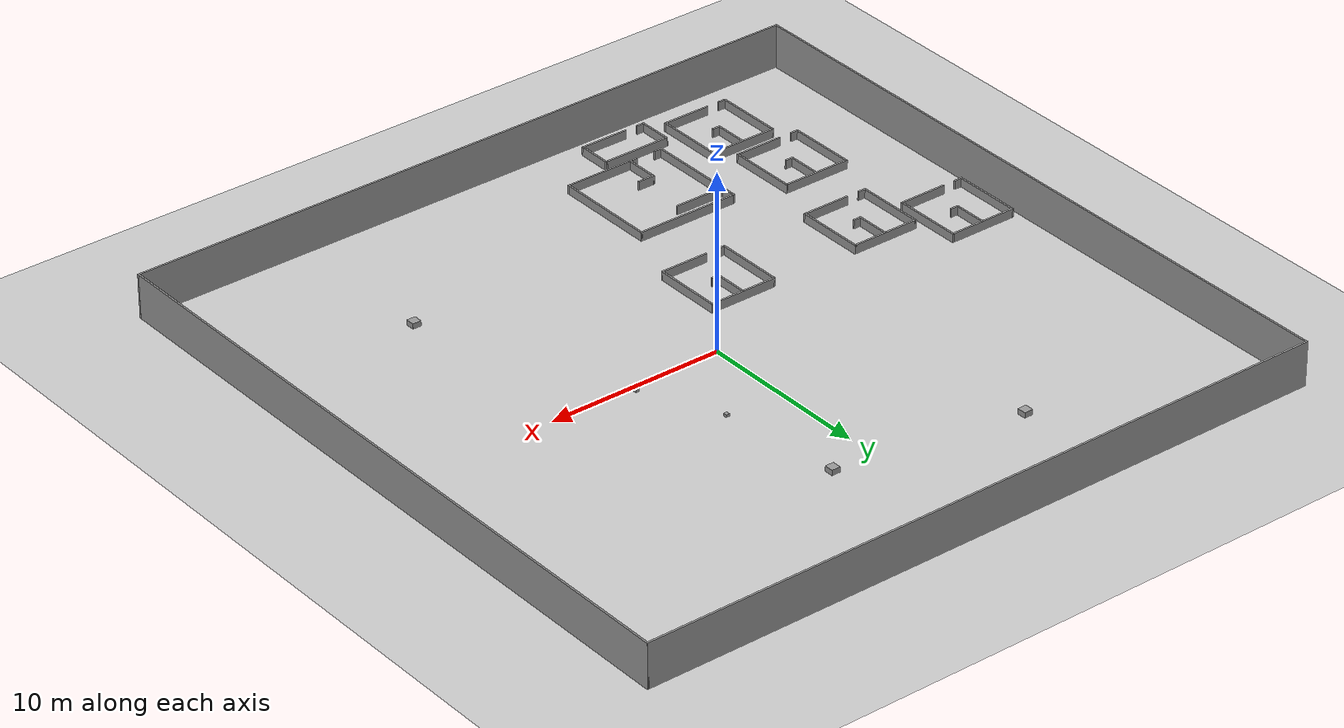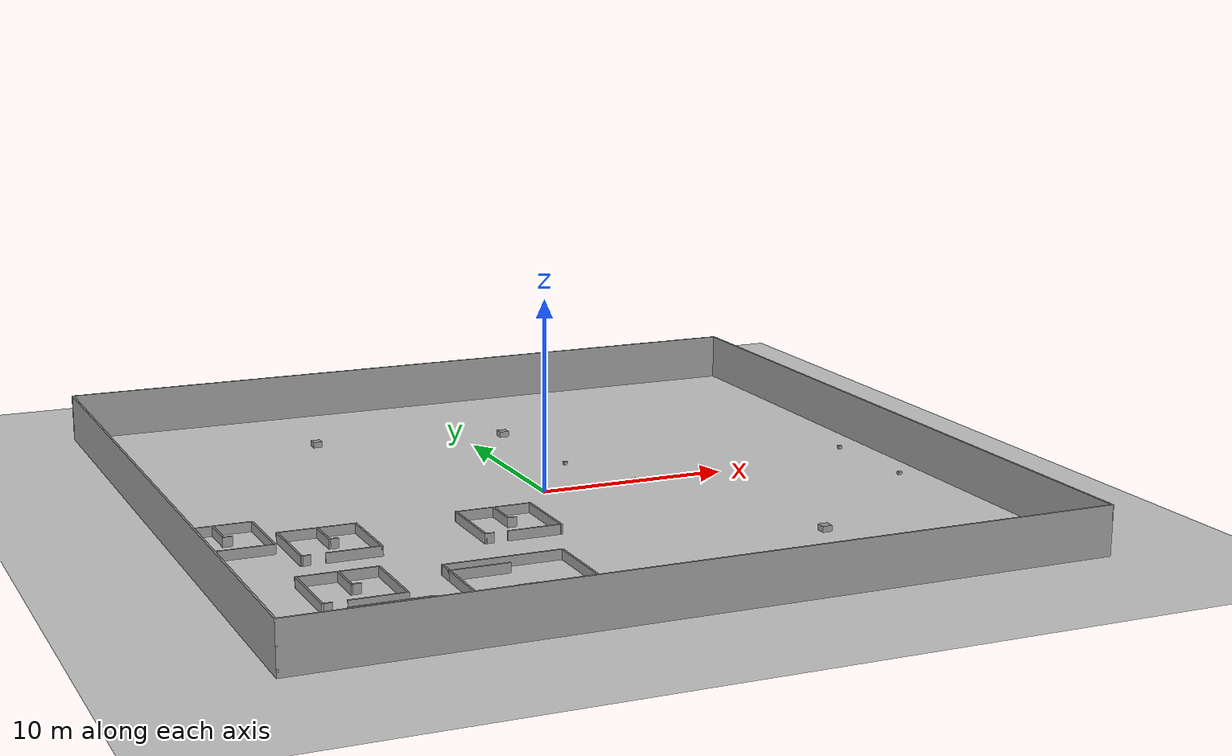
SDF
<sdf version="1.6">
 <world name="default">
  <model name="ground_plane">
   <static>1</static>
   <link name="link">
    <collision name="collision">
     <geometry><plane><normal>0 0 1</normal><size>40 40</size></plane></geometry>
     <surface>
      <contact><collide_bitmask>65535</collide_bitmask></contact>
      <friction><ode><mu>100</mu><mu2>50</mu2></ode></friction>
     </surface>
     <max_contacts>15</max_contacts>
    </collision>
    <visual name="visual">
     <cast_shadows>0</cast_shadows>
     <geometry><plane><normal>0 0 1</normal><size>40 40</size></plane></geometry>
     <material>
      <script><uri>file://media/materials/scripts/gazebo.material</uri><name>Gazebo/Grey</name></script>
     </material>
    </visual>
   </link>
  </model>
  <model name="outsidewall.sdf">
   <link name="Wall_3">
    <collision name="Wall_3_Collision">
     <geometry><box><size>40 0.10 2.5</size></box></geometry>
     <pose>0 0 1.25 0 -0 0</pose>
    </collision>
    <visual name="Wall_3_Visual">
     <pose>0 0 1.25 0 -0 0</pose>
     <geometry><box><size>40 0.10 2.5</size></box></geometry>
     <material>
      <script><uri>file://media/materials/scripts/gazebo.material</uri><name>Gazebo/Grey</name></script>
      <ambient>1 1 1 1</ambient>
     </material>
     <meta><layer>0</layer></meta>
    </visual>
    <pose>0 19.95 0 0 -0 0</pose>
   </link>
   <link name="Wall_5">
    <collision name="Wall_5_Collision">
     <geometry><box><size>40 0.10 2.5</size></box></geometry>
     <pose>0 0 1.25 0 -0 0</pose>
    </collision>
    <visual name="Wall_5_Visual">
     <pose>0 0 1.25 0 -0 0</pose>
     <geometry><box><size>40 0.10 2.5</size></box></geometry>
     <material>
      <script><uri>file://media/materials/scripts/gazebo.material</uri><name>Gazebo/Grey</name></script>
      <ambient>1 1 1 1</ambient>
     </material>
     <meta><layer>0</layer></meta>
    </visual>
    <pose>-19.95 0 0 0 -0 1.5707</pose>
   </link>
   <link name="Wall_6">
    <collision name="Wall_6_Collision">
     <geometry><box><size>40 0.10 2.5</size></box></geometry>
     <pose>0 0 1.25 0 -0 0</pose>
    </collision>
    <visual name="Wall_6_Visual">
     <pose>0 0 1.25 0 -0 0</pose>
     <geometry><box><size>40 0.10 2.5</size></box></geometry>
     <material>
      <script><uri>file://media/materials/scripts/gazebo.material</uri><name>Gazebo/Grey</name></script>
      <ambient>1 1 1 1</ambient>
     </material>
     <meta><layer>0</layer></meta>
    </visual>
    <pose>0 -19.95 0 0 -0 0</pose>
   </link>
   <link name="Wall_7">
    <collision name="Wall_7_Collision">
     <geometry><box><size>40 0.10 2.5</size></box></geometry>
     <pose>0 0 1.25 0 -0 0</pose>
    </collision>
    <visual name="Wall_7_Visual">
     <pose>0 0 1.25 0 -0 0</pose>
     <geometry><box><size>40 0.10 2.5</size></box></geometry>
     <material>
      <script><uri>file://media/materials/scripts/gazebo.material</uri><name>Gazebo/Grey</name></script>
      <ambient>1 1 1 1</ambient>
     </material>
     <meta><layer>0</layer></meta>
    </visual>
    <pose>19.95 0 0 0 -0 1.5707</pose>
   </link>
   <static>1</static>
  </model>
  <model name="shape5">
   <pose>-6.5 -13.4 0 0 -0 0</pose>
   <link name="Wall_10">
    <collision name="Wall_10_Collision">
     <geometry><box><size>6 0.1 0.5</size></box></geometry>
     <pose>0 0 0.25 0 -0 0</pose>
    </collision>
    <visual name="Wall_10_Visual">
     <pose>0 0 0.25 0 -0 0</pose>
     <geometry><box><size>6 0.1 0.5</size></box></geometry>
     <material>
      <script><uri>file://media/materials/scripts/gazebo.material</uri><name>Gazebo/Grey</name></script>
      <ambient>1 1 1 1</ambient>
     </material>
     <meta><layer>0</layer></meta>
    </visual>
    <pose>-0 2.95 0 0 -0 0</pose>
   </link>
   <link name="Wall_11">
    <collision name="Wall_11_Collision">
     <geometry><box><size>6 0.1 0.5</size></box></geometry>
     <pose>0 0 0.25 0 -0 0</pose>
    </collision>
    <visual name="Wall_11_Visual">
     <pose>0 0 0.25 0 -0 0</pose>
     <geometry><box><size>6 0.1 0.5</size></box></geometry>
     <material>
      <script><uri>file://media/materials/scripts/gazebo.material</uri><name>Gazebo/Grey</name></script>
      <ambient>1 1 1 1</ambient>
     </material>
     <meta><layer>0</layer></meta>
    </visual>
    <pose>2.95 0 0 0 -0 -1.5708</pose>
   </link>
   <link name="Wall_12">
    <collision name="Wall_12_Collision">
     <geometry><box><size>4 0.1 0.5</size></box></geometry>
     <pose>0 0 0.25 0 -0 0</pose>
    </collision>
    <visual name="Wall_12_Visual">
     <pose>0 0 0.25 0 -0 0</pose>
     <geometry><box><size>4 0.1 0.5</size></box></geometry>
     <material>
      <script><uri>file://media/materials/scripts/gazebo.material</uri><name>Gazebo/Grey</name></script>
      <ambient>1 1 1 1</ambient>
     </material>
     <meta><layer>0</layer></meta>
    </visual>
    <pose>1 -2.95 0 0 -0 3.14159</pose>
   </link>
   <link name="Wall_13">
    <collision name="Wall_13_Collision">
     <geometry><box><size>2 0.1 0.5</size></box></geometry>
     <pose>0 0 0.25 0 -0 0</pose>
    </collision>
    <visual name="Wall_13_Visual">
     <pose>0 0 0.25 0 -0 0</pose>
     <geometry><box><size>2 0.1 0.5</size></box></geometry>
     <material>
      <script><uri>file://media/materials/scripts/gazebo.material</uri><name>Gazebo/Grey</name></script>
      <ambient>1 1 1 1</ambient>
     </material>
     <meta><layer>0</layer></meta>
    </visual>
    <pose>-0.95 -2 0 0 -0 1.5708</pose>
   </link>
   <link name="Wall_14">
    <collision name="Wall_14_Collision">
     <geometry><box><size>1.00029 0.1 0.5</size></box></geometry>
     <pose>0 0 0.25 0 -0 0</pose>
    </collision>
    <visual name="Wall_14_Visual">
     <pose>0 0 0.25 0 -0 0</pose>
     <geometry><box><size>1.00029 0.1 0.5</size></box></geometry>
     <material>
      <script><uri>file://media/materials/scripts/gazebo.material</uri><name>Gazebo/Grey</name></script>
      <ambient>1 1 1 1</ambient>
     </material>
     <meta><layer>0</layer></meta>
    </visual>
    <pose>-0.5 -1.05 0 0 -0 0</pose>
   </link>
   <link name="Wall_18">
    <collision name="Wall_18_Collision">
     <geometry><box><size>1 0.1 0.5</size></box></geometry>
     <pose>0 0 0.25 0 -0 0</pose>
    </collision>
    <visual name="Wall_18_Visual">
     <pose>0 0 0.25 0 -0 0</pose>
     <geometry><box><size>1 0.1 0.5</size></box></geometry>
     <material>
      <script><uri>file://media/materials/scripts/gazebo.material</uri><name>Gazebo/Grey</name></script>
      <ambient>1 1 1 1</ambient>
     </material>
     <meta><layer>0</layer></meta>
    </visual>
    <pose>-2.95 2.5 0 0 -0 -1.5708</pose>
   </link>
   <link name="Wall_19">
    <collision name="Wall_19_Collision">
     <geometry><box><size>3 0.1 0.5</size></box></geometry>
     <pose>0 0 0.25 0 -0 0</pose>
    </collision>
    <visual name="Wall_19_Visual">
     <pose>0 0 0.25 0 -0 0</pose>
     <geometry><box><size>3 0.1 0.5</size></box></geometry>
     <material>
      <script><uri>file://media/materials/scripts/gazebo.material</uri><name>Gazebo/Grey</name></script>
      <ambient>1 1 1 1</ambient>
     </material>
     <meta><layer>0</layer></meta>
    </visual>
    <pose>-1.5 2.05 0 0 -0 0</pose>
   </link>
   <link name="Wall_21">
    <collision name="Wall_21_Collision">
     <geometry><box><size>5.1 0.1 0.5</size></box></geometry>
     <pose>0 0 0.25 0 -0 0</pose>
    </collision>
    <visual name="Wall_21_Visual">
     <pose>0 0 0.25 0 -0 0</pose>
     <geometry><box><size>5.1 0.1 0.5</size></box></geometry>
     <material>
      <script><uri>file://media/materials/scripts/gazebo.material</uri><name>Gazebo/Grey</name></script>
      <ambient>1 1 1 1</ambient>
     </material>
     <meta><layer>0</layer></meta>
    </visual>
    <pose>-2.95 -0.45 0 0 -0 -1.5708</pose>
   </link>
   <link name="Wall_22">
    <collision name="Wall_22_Collision">
     <geometry><box><size>0.5 0.1 0.5</size></box></geometry>
     <pose>0 0 0.25 0 -0 0</pose>
    </collision>
    <visual name="Wall_22_Visual">
     <pose>0 0 0.25 0 -0 0</pose>
     <geometry><box><size>0.5 0.1 0.5</size></box></geometry>
     <material>
      <script><uri>file://media/materials/scripts/gazebo.material</uri><name>Gazebo/Grey</name></script>
      <ambient>1 1 1 1</ambient>
     </material>
     <meta><layer>0</layer></meta>
    </visual>
    <pose>-2.75 -2.95 0 0 -0 0</pose>
   </link>
   <link name="Wall_24">
    <collision name="Wall_24_Collision">
     <geometry><box><size>0.5 0.1 0.5</size></box></geometry>
     <pose>0 0 0.25 0 -0 0</pose>
    </collision>
    <visual name="Wall_24_Visual">
     <pose>0 0 0.25 0 -0 0</pose>
     <geometry><box><size>0.5 0.1 0.5</size></box></geometry>
     <material>
      <script><uri>file://media/materials/scripts/gazebo.material</uri><name>Gazebo/Grey</name></script>
      <ambient>1 1 1 1</ambient>
     </material>
     <meta><layer>0</layer></meta>
    </visual>
    <pose>-1.15 -2.95 0 0 -0 3.14159</pose>
   </link>
   <static>1</static>
  </model>
  <model name="shape4">
   <pose>-13 -4.8 0 0 -0 0</pose>
   <link name="Wall_0">
    <collision name="Wall_0_Collision">
     <geometry><box><size>4 0.1 0.5</size></box></geometry>
     <pose>0 0 0.25 0 -0 0</pose>
    </collision>
    <visual name="Wall_0_Visual">
     <pose>0 0 0.25 0 -0 0</pose>
     <geometry><box><size>4 0.1 0.5</size></box></geometry>
     <material>
      <script><uri>file://media/materials/scripts/gazebo.material</uri><name>Gazebo/Grey</name></script>
      <ambient>1 1 1 1</ambient>
     </material>
     <meta><layer>0</layer></meta>
    </visual>
    <pose>-1.95 0 0 0 -0 -1.5708</pose>
   </link>
   <link name="Wall_1">
    <collision name="Wall_1_Collision">
     <geometry><box><size>0.5 0.1 0.5</size></box></geometry>
     <pose>0 0 0.25 0 -0 0</pose>
    </collision>
    <visual name="Wall_1_Visual">
     <pose>0 0 0.25 0 -0 0</pose>
     <geometry><box><size>0.5 0.1 0.5</size></box></geometry>
     <material>
      <script><uri>file://media/materials/scripts/gazebo.material</uri><name>Gazebo/Grey</name></script>
      <ambient>1 1 1 1</ambient>
     </material>
     <meta><layer>0</layer></meta>
    </visual>
    <pose>-1.75 -1.95 0 0 -0 0</pose>
   </link>
   <link name="Wall_3">
    <collision name="Wall_3_Collision">
     <geometry><box><size>4 0.1 0.5</size></box></geometry>
     <pose>0 0 0.25 0 -0 0</pose>
    </collision>
    <visual name="Wall_3_Visual">
     <pose>0 0 0.25 0 -0 0</pose>
     <geometry><box><size>4 0.1 0.5</size></box></geometry>
     <material>
      <script><uri>file://media/materials/scripts/gazebo.material</uri><name>Gazebo/Grey</name></script>
      <ambient>1 1 1 1</ambient>
     </material>
     <meta><layer>0</layer></meta>
    </visual>
    <pose>0 1.95 0 0 -0 0</pose>
   </link>
   <link name="Wall_4">
    <collision name="Wall_4_Collision">
     <geometry><box><size>4 0.1 0.5</size></box></geometry>
     <pose>0 0 0.25 0 -0 0</pose>
    </collision>
    <visual name="Wall_4_Visual">
     <pose>0 0 0.25 0 -0 0</pose>
     <geometry><box><size>4 0.1 0.5</size></box></geometry>
     <material>
      <script><uri>file://media/materials/scripts/gazebo.material</uri><name>Gazebo/Grey</name></script>
      <ambient>1 1 1 1</ambient>
     </material>
     <meta><layer>0</layer></meta>
    </visual>
    <pose>1.95 0 0 0 -0 -1.5708</pose>
   </link>
   <link name="Wall_5">
    <collision name="Wall_5_Collision">
     <geometry><box><size>2.8 0.1 0.5</size></box></geometry>
     <pose>0 0 0.25 0 -0 0</pose>
    </collision>
    <visual name="Wall_5_Visual">
     <pose>0 0 0.25 0 -0 0</pose>
     <geometry><box><size>2.8 0.1 0.5</size></box></geometry>
     <material>
      <script><uri>file://media/materials/scripts/gazebo.material</uri><name>Gazebo/Grey</name></script>
      <ambient>1 1 1 1</ambient>
     </material>
     <meta><layer>0</layer></meta>
    </visual>
    <pose>0.6 -1.95 0 0 -0 3.14159</pose>
   </link>
   <link name="Wall_7">
    <collision name="Wall_7_Collision">
     <geometry><box><size>2 0.1 0.5</size></box></geometry>
     <pose>0 0 0.25 0 -0 0</pose>
    </collision>
    <visual name="Wall_7_Visual">
     <pose>0 0 0.25 0 -0 0</pose>
     <geometry><box><size>2 0.1 0.5</size></box></geometry>
     <material>
      <script><uri>file://media/materials/scripts/gazebo.material</uri><name>Gazebo/Grey</name></script>
      <ambient>1 1 1 1</ambient>
     </material>
     <meta><layer>0</layer></meta>
    </visual>
    <pose>0.015 0.991 0 0 -0 -1.5708</pose>
   </link>
   <link name="Wall_8">
    <collision name="Wall_8_Collision">
     <geometry><box><size>0.5 0.1 0.5</size></box></geometry>
     <pose>0 0 0.25 0 -0 0</pose>
    </collision>
    <visual name="Wall_8_Visual">
     <pose>0 0 0.25 0 -0 0</pose>
     <geometry><box><size>0.5 0.1 0.5</size></box></geometry>
     <material>
      <script><uri>file://media/materials/scripts/gazebo.material</uri><name>Gazebo/Grey</name></script>
      <ambient>1 1 1 1</ambient>
     </material>
     <meta><layer>0</layer></meta>
    </visual>
    <pose>0.215 0.041 0 0 -0 0</pose>
   </link>
   <static>1</static>
  </model>
  <model name="shape4">
   <pose>-4 -4.9 0 0 -0 0</pose>
   <link name="Wall_0">
    <collision name="Wall_0_Collision">
     <geometry><box><size>4 0.1 0.5</size></box></geometry>
     <pose>0 0 0.25 0 -0 0</pose>
    </collision>
    <visual name="Wall_0_Visual">
     <pose>0 0 0.25 0 -0 0</pose>
     <geometry><box><size>4 0.1 0.5</size></box></geometry>
     <material>
      <script><uri>file://media/materials/scripts/gazebo.material</uri><name>Gazebo/Grey</name></script>
      <ambient>1 1 1 1</ambient>
     </material>
     <meta><layer>0</layer></meta>
    </visual>
    <pose>-1.95 0 0 0 -0 -1.5708</pose>
   </link>
   <link name="Wall_1">
    <collision name="Wall_1_Collision">
     <geometry><box><size>0.5 0.1 0.5</size></box></geometry>
     <pose>0 0 0.25 0 -0 0</pose>
    </collision>
    <visual name="Wall_1_Visual">
     <pose>0 0 0.25 0 -0 0</pose>
     <geometry><box><size>0.5 0.1 0.5</size></box></geometry>
     <material>
      <script><uri>file://media/materials/scripts/gazebo.material</uri><name>Gazebo/Grey</name></script>
      <ambient>1 1 1 1</ambient>
     </material>
     <meta><layer>0</layer></meta>
    </visual>
    <pose>-1.75 -1.95 0 0 -0 0</pose>
   </link>
   <link name="Wall_3">
    <collision name="Wall_3_Collision">
     <geometry><box><size>4 0.1 0.5</size></box></geometry>
     <pose>0 0 0.25 0 -0 0</pose>
    </collision>
    <visual name="Wall_3_Visual">
     <pose>0 0 0.25 0 -0 0</pose>
     <geometry><box><size>4 0.1 0.5</size></box></geometry>
     <material>
      <script><uri>file://media/materials/scripts/gazebo.material</uri><name>Gazebo/Grey</name></script>
      <ambient>1 1 1 1</ambient>
     </material>
     <meta><layer>0</layer></meta>
    </visual>
    <pose>0 1.95 0 0 -0 0</pose>
   </link>
   <link name="Wall_4">
    <collision name="Wall_4_Collision">
     <geometry><box><size>4 0.1 0.5</size></box></geometry>
     <pose>0 0 0.25 0 -0 0</pose>
    </collision>
    <visual name="Wall_4_Visual">
     <pose>0 0 0.25 0 -0 0</pose>
     <geometry><box><size>4 0.1 0.5</size></box></geometry>
     <material>
      <script><uri>file://media/materials/scripts/gazebo.material</uri><name>Gazebo/Grey</name></script>
      <ambient>1 1 1 1</ambient>
     </material>
     <meta><layer>0</layer></meta>
    </visual>
    <pose>1.95 0 0 0 -0 -1.5708</pose>
   </link>
   <link name="Wall_5">
    <collision name="Wall_5_Collision">
     <geometry><box><size>2.8 0.1 0.5</size></box></geometry>
     <pose>0 0 0.25 0 -0 0</pose>
    </collision>
    <visual name="Wall_5_Visual">
     <pose>0 0 0.25 0 -0 0</pose>
     <geometry><box><size>2.8 0.1 0.5</size></box></geometry>
     <material>
      <script><uri>file://media/materials/scripts/gazebo.material</uri><name>Gazebo/Grey</name></script>
      <ambient>1 1 1 1</ambient>
     </material>
     <meta><layer>0</layer></meta>
    </visual>
    <pose>0.6 -1.95 0 0 -0 3.14159</pose>
   </link>
   <link name="Wall_7">
    <collision name="Wall_7_Collision">
     <geometry><box><size>2 0.1 0.5</size></box></geometry>
     <pose>0 0 0.25 0 -0 0</pose>
    </collision>
    <visual name="Wall_7_Visual">
     <pose>0 0 0.25 0 -0 0</pose>
     <geometry><box><size>2 0.1 0.5</size></box></geometry>
     <material>
      <script><uri>file://media/materials/scripts/gazebo.material</uri><name>Gazebo/Grey</name></script>
      <ambient>1 1 1 1</ambient>
     </material>
     <meta><layer>0</layer></meta>
    </visual>
    <pose>0.015 0.991 0 0 -0 -1.5708</pose>
   </link>
   <link name="Wall_8">
    <collision name="Wall_8_Collision">
     <geometry><box><size>0.5 0.1 0.5</size></box></geometry>
     <pose>0 0 0.25 0 -0 0</pose>
    </collision>
    <visual name="Wall_8_Visual">
     <pose>0 0 0.25 0 -0 0</pose>
     <geometry><box><size>0.5 0.1 0.5</size></box></geometry>
     <material>
      <script><uri>file://media/materials/scripts/gazebo.material</uri><name>Gazebo/Grey</name></script>
      <ambient>1 1 1 1</ambient>
     </material>
     <meta><layer>0</layer></meta>
    </visual>
    <pose>0.215 0.041 0 0 -0 0</pose>
   </link>
   <static>1</static>
  </model>
  <model name="shape4">
   <pose>-13.2 -16.3 0 0 -0 0</pose>
   <link name="Wall_0">
    <collision name="Wall_0_Collision">
     <geometry><box><size>4 0.1 0.5</size></box></geometry>
     <pose>0 0 0.25 0 -0 0</pose>
    </collision>
    <visual name="Wall_0_Visual">
     <pose>0 0 0.25 0 -0 0</pose>
     <geometry><box><size>4 0.1 0.5</size></box></geometry>
     <material>
      <script><uri>file://media/materials/scripts/gazebo.material</uri><name>Gazebo/Grey</name></script>
      <ambient>1 1 1 1</ambient>
     </material>
     <meta><layer>0</layer></meta>
    </visual>
    <pose>-1.95 0 0 0 -0 -1.5708</pose>
   </link>
   <link name="Wall_1">
    <collision name="Wall_1_Collision">
     <geometry><box><size>0.5 0.1 0.5</size></box></geometry>
     <pose>0 0 0.25 0 -0 0</pose>
    </collision>
    <visual name="Wall_1_Visual">
     <pose>0 0 0.25 0 -0 0</pose>
     <geometry><box><size>0.5 0.1 0.5</size></box></geometry>
     <material>
      <script><uri>file://media/materials/scripts/gazebo.material</uri><name>Gazebo/Grey</name></script>
      <ambient>1 1 1 1</ambient>
     </material>
     <meta><layer>0</layer></meta>
    </visual>
    <pose>-1.75 -1.95 0 0 -0 0</pose>
   </link>
   <link name="Wall_3">
    <collision name="Wall_3_Collision">
     <geometry><box><size>4 0.1 0.5</size></box></geometry>
     <pose>0 0 0.25 0 -0 0</pose>
    </collision>
    <visual name="Wall_3_Visual">
     <pose>0 0 0.25 0 -0 0</pose>
     <geometry><box><size>4 0.1 0.5</size></box></geometry>
     <material>
      <script><uri>file://media/materials/scripts/gazebo.material</uri><name>Gazebo/Grey</name></script>
      <ambient>1 1 1 1</ambient>
     </material>
     <meta><layer>0</layer></meta>
    </visual>
    <pose>0 1.95 0 0 -0 0</pose>
   </link>
   <link name="Wall_4">
    <collision name="Wall_4_Collision">
     <geometry><box><size>4 0.1 0.5</size></box></geometry>
     <pose>0 0 0.25 0 -0 0</pose>
    </collision>
    <visual name="Wall_4_Visual">
     <pose>0 0 0.25 0 -0 0</pose>
     <geometry><box><size>4 0.1 0.5</size></box></geometry>
     <material>
      <script><uri>file://media/materials/scripts/gazebo.material</uri><name>Gazebo/Grey</name></script>
      <ambient>1 1 1 1</ambient>
     </material>
     <meta><layer>0</layer></meta>
    </visual>
    <pose>1.95 0 0 0 -0 -1.5708</pose>
   </link>
   <link name="Wall_5">
    <collision name="Wall_5_Collision">
     <geometry><box><size>2.8 0.1 0.5</size></box></geometry>
     <pose>0 0 0.25 0 -0 0</pose>
    </collision>
    <visual name="Wall_5_Visual">
     <pose>0 0 0.25 0 -0 0</pose>
     <geometry><box><size>2.8 0.1 0.5</size></box></geometry>
     <material>
      <script><uri>file://media/materials/scripts/gazebo.material</uri><name>Gazebo/Grey</name></script>
      <ambient>1 1 1 1</ambient>
     </material>
     <meta><layer>0</layer></meta>
    </visual>
    <pose>0.6 -1.95 0 0 -0 3.14159</pose>
   </link>
   <link name="Wall_7">
    <collision name="Wall_7_Collision">
     <geometry><box><size>2 0.1 0.5</size></box></geometry>
     <pose>0 0 0.25 0 -0 0</pose>
    </collision>
    <visual name="Wall_7_Visual">
     <pose>0 0 0.25 0 -0 0</pose>
     <geometry><box><size>2 0.1 0.5</size></box></geometry>
     <material>
      <script><uri>file://media/materials/scripts/gazebo.material</uri><name>Gazebo/Grey</name></script>
      <ambient>1 1 1 1</ambient>
     </material>
     <meta><layer>0</layer></meta>
    </visual>
    <pose>0.015 0.991 0 0 -0 -1.5708</pose>
   </link>
   <link name="Wall_8">
    <collision name="Wall_8_Collision">
     <geometry><box><size>0.5 0.1 0.5</size></box></geometry>
     <pose>0 0 0.25 0 -0 0</pose>
    </collision>
    <visual name="Wall_8_Visual">
     <pose>0 0 0.25 0 -0 0</pose>
     <geometry><box><size>0.5 0.1 0.5</size></box></geometry>
     <material>
      <script><uri>file://media/materials/scripts/gazebo.material</uri><name>Gazebo/Grey</name></script>
      <ambient>1 1 1 1</ambient>
     </material>
     <meta><layer>0</layer></meta>
    </visual>
    <pose>0.215 0.041 0 0 -0 0</pose>
   </link>
   <static>1</static>
  </model>
  <model name="shape4">
   <pose>-14.1 -11.5 0 0 -0 0</pose>
   <link name="Wall_0">
    <collision name="Wall_0_Collision">
     <geometry><box><size>4 0.1 0.5</size></box></geometry>
     <pose>0 0 0.25 0 -0 0</pose>
    </collision>
    <visual name="Wall_0_Visual">
     <pose>0 0 0.25 0 -0 0</pose>
     <geometry><box><size>4 0.1 0.5</size></box></geometry>
     <material>
      <script><uri>file://media/materials/scripts/gazebo.material</uri><name>Gazebo/Grey</name></script>
      <ambient>1 1 1 1</ambient>
     </material>
     <meta><layer>0</layer></meta>
    </visual>
    <pose>-1.95 0 0 0 -0 -1.5708</pose>
   </link>
   <link name="Wall_1">
    <collision name="Wall_1_Collision">
     <geometry><box><size>0.5 0.1 0.5</size></box></geometry>
     <pose>0 0 0.25 0 -0 0</pose>
    </collision>
    <visual name="Wall_1_Visual">
     <pose>0 0 0.25 0 -0 0</pose>
     <geometry><box><size>0.5 0.1 0.5</size></box></geometry>
     <material>
      <script><uri>file://media/materials/scripts/gazebo.material</uri><name>Gazebo/Grey</name></script>
      <ambient>1 1 1 1</ambient>
     </material>
     <meta><layer>0</layer></meta>
    </visual>
    <pose>-1.75 -1.95 0 0 -0 0</pose>
   </link>
   <link name="Wall_3">
    <collision name="Wall_3_Collision">
     <geometry><box><size>4 0.1 0.5</size></box></geometry>
     <pose>0 0 0.25 0 -0 0</pose>
    </collision>
    <visual name="Wall_3_Visual">
     <pose>0 0 0.25 0 -0 0</pose>
     <geometry><box><size>4 0.1 0.5</size></box></geometry>
     <material>
      <script><uri>file://media/materials/scripts/gazebo.material</uri><name>Gazebo/Grey</name></script>
      <ambient>1 1 1 1</ambient>
     </material>
     <meta><layer>0</layer></meta>
    </visual>
    <pose>0 1.95 0 0 -0 0</pose>
   </link>
   <link name="Wall_4">
    <collision name="Wall_4_Collision">
     <geometry><box><size>4 0.1 0.5</size></box></geometry>
     <pose>0 0 0.25 0 -0 0</pose>
    </collision>
    <visual name="Wall_4_Visual">
     <pose>0 0 0.25 0 -0 0</pose>
     <geometry><box><size>4 0.1 0.5</size></box></geometry>
     <material>
      <script><uri>file://media/materials/scripts/gazebo.material</uri><name>Gazebo/Grey</name></script>
      <ambient>1 1 1 1</ambient>
     </material>
     <meta><layer>0</layer></meta>
    </visual>
    <pose>1.95 0 0 0 -0 -1.5708</pose>
   </link>
   <link name="Wall_5">
    <collision name="Wall_5_Collision">
     <geometry><box><size>2.8 0.1 0.5</size></box></geometry>
     <pose>0 0 0.25 0 -0 0</pose>
    </collision>
    <visual name="Wall_5_Visual">
     <pose>0 0 0.25 0 -0 0</pose>
     <geometry><box><size>2.8 0.1 0.5</size></box></geometry>
     <material>
      <script><uri>file://media/materials/scripts/gazebo.material</uri><name>Gazebo/Grey</name></script>
      <ambient>1 1 1 1</ambient>
     </material>
     <meta><layer>0</layer></meta>
    </visual>
    <pose>0.6 -1.95 0 0 -0 3.14159</pose>
   </link>
   <link name="Wall_7">
    <collision name="Wall_7_Collision">
     <geometry><box><size>2 0.1 0.5</size></box></geometry>
     <pose>0 0 0.25 0 -0 0</pose>
    </collision>
    <visual name="Wall_7_Visual">
     <pose>0 0 0.25 0 -0 0</pose>
     <geometry><box><size>2 0.1 0.5</size></box></geometry>
     <material>
      <script><uri>file://media/materials/scripts/gazebo.material</uri><name>Gazebo/Grey</name></script>
      <ambient>1 1 1 1</ambient>
     </material>
     <meta><layer>0</layer></meta>
    </visual>
    <pose>0.015 0.991 0 0 -0 -1.5708</pose>
   </link>
   <link name="Wall_8">
    <collision name="Wall_8_Collision">
     <geometry><box><size>0.5 0.1 0.5</size></box></geometry>
     <pose>0 0 0.25 0 -0 0</pose>
    </collision>
    <visual name="Wall_8_Visual">
     <pose>0 0 0.25 0 -0 0</pose>
     <geometry><box><size>0.5 0.1 0.5</size></box></geometry>
     <material>
      <script><uri>file://media/materials/scripts/gazebo.material</uri><name>Gazebo/Grey</name></script>
      <ambient>1 1 1 1</ambient>
     </material>
     <meta><layer>0</layer></meta>
    </visual>
    <pose>0.215 0.041 0 0 -0 0</pose>
   </link>
   <static>1</static>
  </model>
  <model name="shape4">
   <pose>-17.5 -2.6 0 0 -0 0</pose>
   <link name="Wall_0">
    <collision name="Wall_0_Collision">
     <geometry><box><size>4 0.1 0.5</size></box></geometry>
     <pose>0 0 0.25 0 -0 0</pose>
    </collision>
    <visual name="Wall_0_Visual">
     <pose>0 0 0.25 0 -0 0</pose>
     <geometry><box><size>4 0.1 0.5</size></box></geometry>
     <material>
      <script><uri>file://media/materials/scripts/gazebo.material</uri><name>Gazebo/Grey</name></script>
      <ambient>1 1 1 1</ambient>
     </material>
     <meta><layer>0</layer></meta>
    </visual>
    <pose>-1.95 0 0 0 -0 -1.5708</pose>
   </link>
   <link name="Wall_1">
    <collision name="Wall_1_Collision">
     <geometry><box><size>0.5 0.1 0.5</size></box></geometry>
     <pose>0 0 0.25 0 -0 0</pose>
    </collision>
    <visual name="Wall_1_Visual">
     <pose>0 0 0.25 0 -0 0</pose>
     <geometry><box><size>0.5 0.1 0.5</size></box></geometry>
     <material>
      <script><uri>file://media/materials/scripts/gazebo.material</uri><name>Gazebo/Grey</name></script>
      <ambient>1 1 1 1</ambient>
     </material>
     <meta><layer>0</layer></meta>
    </visual>
    <pose>-1.75 -1.95 0 0 -0 0</pose>
   </link>
   <link name="Wall_3">
    <collision name="Wall_3_Collision">
     <geometry><box><size>4 0.1 0.5</size></box></geometry>
     <pose>0 0 0.25 0 -0 0</pose>
    </collision>
    <visual name="Wall_3_Visual">
     <pose>0 0 0.25 0 -0 0</pose>
     <geometry><box><size>4 0.1 0.5</size></box></geometry>
     <material>
      <script><uri>file://media/materials/scripts/gazebo.material</uri><name>Gazebo/Grey</name></script>
      <ambient>1 1 1 1</ambient>
     </material>
     <meta><layer>0</layer></meta>
    </visual>
    <pose>0 1.95 0 0 -0 0</pose>
   </link>
   <link name="Wall_4">
    <collision name="Wall_4_Collision">
     <geometry><box><size>4 0.1 0.5</size></box></geometry>
     <pose>0 0 0.25 0 -0 0</pose>
    </collision>
    <visual name="Wall_4_Visual">
     <pose>0 0 0.25 0 -0 0</pose>
     <geometry><box><size>4 0.1 0.5</size></box></geometry>
     <material>
      <script><uri>file://media/materials/scripts/gazebo.material</uri><name>Gazebo/Grey</name></script>
      <ambient>1 1 1 1</ambient>
     </material>
     <meta><layer>0</layer></meta>
    </visual>
    <pose>1.95 0 0 0 -0 -1.5708</pose>
   </link>
   <link name="Wall_5">
    <collision name="Wall_5_Collision">
     <geometry><box><size>2.8 0.1 0.5</size></box></geometry>
     <pose>0 0 0.25 0 -0 0</pose>
    </collision>
    <visual name="Wall_5_Visual">
     <pose>0 0 0.25 0 -0 0</pose>
     <geometry><box><size>2.8 0.1 0.5</size></box></geometry>
     <material>
      <script><uri>file://media/materials/scripts/gazebo.material</uri><name>Gazebo/Grey</name></script>
      <ambient>1 1 1 1</ambient>
     </material>
     <meta><layer>0</layer></meta>
    </visual>
    <pose>0.6 -1.95 0 0 -0 3.14159</pose>
   </link>
   <link name="Wall_7">
    <collision name="Wall_7_Collision">
     <geometry><box><size>2 0.1 0.5</size></box></geometry>
     <pose>0 0 0.25 0 -0 0</pose>
    </collision>
    <visual name="Wall_7_Visual">
     <pose>0 0 0.25 0 -0 0</pose>
     <geometry><box><size>2 0.1 0.5</size></box></geometry>
     <material>
      <script><uri>file://media/materials/scripts/gazebo.material</uri><name>Gazebo/Grey</name></script>
      <ambient>1 1 1 1</ambient>
     </material>
     <meta><layer>0</layer></meta>
    </visual>
    <pose>0.015 0.991 0 0 -0 -1.5708</pose>
   </link>
   <link name="Wall_8">
    <collision name="Wall_8_Collision">
     <geometry><box><size>0.5 0.1 0.5</size></box></geometry>
     <pose>0 0 0.25 0 -0 0</pose>
    </collision>
    <visual name="Wall_8_Visual">
     <pose>0 0 0.25 0 -0 0</pose>
     <geometry><box><size>0.5 0.1 0.5</size></box></geometry>
     <material>
      <script><uri>file://media/materials/scripts/gazebo.material</uri><name>Gazebo/Grey</name></script>
      <ambient>1 1 1 1</ambient>
     </material>
     <meta><layer>0</layer></meta>
    </visual>
    <pose>0.215 0.041 0 0 -0 0</pose>
   </link>
   <static>1</static>
  </model>
  <model name="shape2">
   <pose>-8.4 -18 0 0 -0 0</pose>
   <link name="Wall_0">
    <collision name="Wall_0_Collision">
     <geometry><box><size>3.98685 0.1 0.5</size></box></geometry>
     <pose>0 0 0.25 0 -0 0</pose>
    </collision>
    <visual name="Wall_0_Visual">
     <pose>0 0 0.25 0 -0 0</pose>
     <geometry><box><size>3.98685 0.1 0.5</size></box></geometry>
     <material>
      <script><uri>file://media/materials/scripts/gazebo.material</uri><name>Gazebo/Grey</name></script>
      <ambient>1 1 1 1</ambient>
     </material>
     <meta><layer>0</layer></meta>
    </visual>
    <pose>0.003288 0.95 0 0 -0 0</pose>
   </link>
   <link name="Wall_1">
    <collision name="Wall_1_Collision">
     <geometry><box><size>2 0.1 0.5</size></box></geometry>
     <pose>0 0 0.25 0 -0 0</pose>
    </collision>
    <visual name="Wall_1_Visual">
     <pose>0 0 0.25 0 -0 0</pose>
     <geometry><box><size>2 0.1 0.5</size></box></geometry>
     <material>
      <script><uri>file://media/materials/scripts/gazebo.material</uri><name>Gazebo/Grey</name></script>
      <ambient>1 1 1 1</ambient>
     </material>
     <meta><layer>0</layer></meta>
    </visual>
    <pose>1.94671 0 0 0 -0 -1.5708</pose>
   </link>
   <link name="Wall_2">
    <collision name="Wall_2_Collision">
     <geometry><box><size>2.8 0.1 0.5</size></box></geometry>
     <pose>0 0 0.25 0 -0 0</pose>
    </collision>
    <visual name="Wall_2_Visual">
     <pose>0 0 0.25 0 -0 0</pose>
     <geometry><box><size>2.8 0.1 0.5</size></box></geometry>
     <material>
      <script><uri>file://media/materials/scripts/gazebo.material</uri><name>Gazebo/Grey</name></script>
      <ambient>1 1 1 1</ambient>
     </material>
     <meta><layer>0</layer></meta>
    </visual>
    <pose>0.596712 -0.95 0 0 -0 3.14159</pose>
   </link>
   <link name="Wall_4">
    <collision name="Wall_4_Collision">
     <geometry><box><size>2 0.1 0.5</size></box></geometry>
     <pose>0 0 0.25 0 -0 0</pose>
    </collision>
    <visual name="Wall_4_Visual">
     <pose>0 0 0.25 0 -0 0</pose>
     <geometry><box><size>2 0.1 0.5</size></box></geometry>
     <material>
      <script><uri>file://media/materials/scripts/gazebo.material</uri><name>Gazebo/Grey</name></script>
      <ambient>1 1 1 1</ambient>
     </material>
     <meta><layer>0</layer></meta>
    </visual>
    <pose>-1.94671 0 0 0 -0 -1.5708</pose>
   </link>
   <link name="Wall_5">
    <collision name="Wall_5_Collision">
     <geometry><box><size>0.5 0.1 0.5</size></box></geometry>
     <pose>0 0 0.25 0 -0 0</pose>
    </collision>
    <visual name="Wall_5_Visual">
     <pose>0 0 0.25 0 -0 0</pose>
     <geometry><box><size>0.5 0.1 0.5</size></box></geometry>
     <material>
      <script><uri>file://media/materials/scripts/gazebo.material</uri><name>Gazebo/Grey</name></script>
      <ambient>1 1 1 1</ambient>
     </material>
     <meta><layer>0</layer></meta>
    </visual>
    <pose>-1.74671 -0.95 0 0 -0 0</pose>
   </link>
   <static>1</static>
  </model>
  <model name="box_d=20">
   <link name="link_2">
    <inertial>
     <mass>1</mass>
     <inertia>
      <ixx>0.166667</ixx>
      <ixy>0</ixy>
      <ixz>0</ixz>
      <iyy>0.166667</iyy>
      <iyz>0</iyz>
      <izz>0.166667</izz>
     </inertia>
    </inertial>
    <pose>18.4 1.8 0 0 -0 0</pose>
    <visual name="visual">
     <geometry><box><size>0.2 0.2 0.2</size></box></geometry>
     <material>
      <lighting>1</lighting>
      <script><uri>file://media/materials/scripts/gazebo.material</uri><name>Gazebo/Grey</name></script>
      <shader type="vertex"><normal_map>__default__</normal_map></shader>
      <ambient>0.3 0.3 0.3 1</ambient>
      <diffuse>0.7 0.7 0.7 1</diffuse>
      <specular>0.01 0.01 0.01 1</specular>
      <emissive>0 0 0 1</emissive>
     </material>
    </visual>
    <collision name="collision">
     <geometry><box><size>0.2 0.2 0.2</size></box></geometry>
     <surface>
      <friction>
       <ode><mu>1</mu><mu2>1</mu2><fdir1>0 0 0</fdir1><slip1>0</slip1><slip2>0</slip2></ode>
       <torsional>
        <coefficient>1</coefficient>
        <patch_radius>0</patch_radius>
        <surface_radius>0</surface_radius>
        <use_patch_radius>1</use_patch_radius>
        <ode><slip>0</slip></ode>
       </torsional>
      </friction>
      <bounce><restitution_coefficient>0</restitution_coefficient><threshold>1e+06</threshold></bounce>
      <contact>
       <collide_without_contact>0</collide_without_contact>
       <collide_without_contact_bitmask>1</collide_without_contact_bitmask>
       <collide_bitmask>1</collide_bitmask>
       <ode>
        <soft_cfm>0</soft_cfm>
        <soft_erp>0.2</soft_erp>
        <kp>1e+13</kp>
        <kd>1</kd>
        <max_vel>0.01</max_vel>
        <min_depth>0</min_depth>
       </ode>
       <bullet>
        <split_impulse>1</split_impulse>
        <split_impulse_penetration_threshold>-0.01</split_impulse_penetration_threshold>
        <soft_cfm>0</soft_cfm>
        <soft_erp>0.2</soft_erp>
        <kp>1e+13</kp>
        <kd>1</kd>
       </bullet>
      </contact>
     </surface>
    </collision>
   </link>
   <static>0</static>
  </model>
  <model name="box_d=20">
   <link name="link_2">
    <inertial>
     <mass>1</mass>
     <inertia>
      <ixx>0.166667</ixx>
      <ixy>0</ixy>
      <ixz>0</ixz>
      <iyy>0.166667</iyy>
      <iyz>0</iyz>
      <izz>0.166667</izz>
     </inertia>
    </inertial>
    <pose>18.6 -4 0 0 -0 0</pose>
    <visual name="visual">
     <geometry><box><size>0.2 0.2 0.2</size></box></geometry>
     <material>
      <lighting>1</lighting>
      <script><uri>file://media/materials/scripts/gazebo.material</uri><name>Gazebo/Grey</name></script>
      <shader type="vertex"><normal_map>__default__</normal_map></shader>
      <ambient>0.3 0.3 0.3 1</ambient>
      <diffuse>0.7 0.7 0.7 1</diffuse>
      <specular>0.01 0.01 0.01 1</specular>
      <emissive>0 0 0 1</emissive>
     </material>
    </visual>
    <collision name="collision">
     <geometry><box><size>0.2 0.2 0.2</size></box></geometry>
     <surface>
      <friction>
       <ode><mu>1</mu><mu2>1</mu2><fdir1>0 0 0</fdir1><slip1>0</slip1><slip2>0</slip2></ode>
       <torsional>
        <coefficient>1</coefficient>
        <patch_radius>0</patch_radius>
        <surface_radius>0</surface_radius>
        <use_patch_radius>1</use_patch_radius>
        <ode><slip>0</slip></ode>
       </torsional>
      </friction>
      <bounce><restitution_coefficient>0</restitution_coefficient><threshold>1e+06</threshold></bounce>
      <contact>
       <collide_without_contact>0</collide_without_contact>
       <collide_without_contact_bitmask>1</collide_without_contact_bitmask>
       <collide_bitmask>1</collide_bitmask>
       <ode>
        <soft_cfm>0</soft_cfm>
        <soft_erp>0.2</soft_erp>
        <kp>1e+13</kp>
        <kd>1</kd>
        <max_vel>0.01</max_vel>
        <min_depth>0</min_depth>
       </ode>
       <bullet>
        <split_impulse>1</split_impulse>
        <split_impulse_penetration_threshold>-0.01</split_impulse_penetration_threshold>
        <soft_cfm>0</soft_cfm>
        <soft_erp>0.2</soft_erp>
        <kp>1e+13</kp>
        <kd>1</kd>
       </bullet>
      </contact>
     </surface>
    </collision>
   </link>
   <static>0</static>
  </model>
  <model name="box_d=50">
   <link name="link_2">
    <inertial>
     <mass>1</mass>
     <inertia>
      <ixx>0.166667</ixx>
      <ixy>0</ixy>
      <ixz>0</ixz>
      <iyy>0.166667</iyy>
      <iyz>0</iyz>
      <izz>0.166667</izz>
     </inertia>
    </inertial>
    <pose>-7.95 13.45 0 0 -0 0</pose>
    <visual name="visual">
     <geometry><box><size>0.5 0.5 0.5</size></box></geometry>
     <material>
      <lighting>1</lighting>
      <script><uri>file://media/materials/scripts/gazebo.material</uri><name>Gazebo/Grey</name></script>
      <shader type="vertex"><normal_map>__default__</normal_map></shader>
      <ambient>0.3 0.3 0.3 1</ambient>
      <diffuse>0.7 0.7 0.7 1</diffuse>
      <specular>0.01 0.01 0.01 1</specular>
      <emissive>0 0 0 1</emissive>
     </material>
    </visual>
    <collision name="collision">
     <geometry><box><size>0.5 0.5 0.5</size></box></geometry>
     <surface>
      <friction>
       <ode><mu>1</mu><mu2>1</mu2><fdir1>0 0 0</fdir1><slip1>0</slip1><slip2>0</slip2></ode>
       <torsional>
        <coefficient>1</coefficient>
        <patch_radius>0</patch_radius>
        <surface_radius>0</surface_radius>
        <use_patch_radius>1</use_patch_radius>
        <ode><slip>0</slip></ode>
       </torsional>
      </friction>
      <bounce><restitution_coefficient>0</restitution_coefficient><threshold>1e+06</threshold></bounce>
      <contact>
       <collide_without_contact>0</collide_without_contact>
       <collide_without_contact_bitmask>1</collide_without_contact_bitmask>
       <collide_bitmask>1</collide_bitmask>
       <ode>
        <soft_cfm>0</soft_cfm>
        <soft_erp>0.2</soft_erp>
        <kp>1e+13</kp>
        <kd>1</kd>
        <max_vel>0.01</max_vel>
        <min_depth>0</min_depth>
       </ode>
       <bullet>
        <split_impulse>1</split_impulse>
        <split_impulse_penetration_threshold>-0.01</split_impulse_penetration_threshold>
        <soft_cfm>0</soft_cfm>
        <soft_erp>0.2</soft_erp>
        <kp>1e+13</kp>
        <kd>1</kd>
       </bullet>
      </contact>
     </surface>
    </collision>
   </link>
   <static>0</static>
  </model>
  <model name="box_d=50">
   <link name="link_2">
    <inertial>
     <mass>1</mass>
     <inertia>
      <ixx>0.166667</ixx>
      <ixy>0</ixy>
      <ixz>0</ixz>
      <iyy>0.166667</iyy>
      <iyz>0</iyz>
      <izz>0.166667</izz>
     </inertia>
    </inertial>
    <pose>2.35 11.55 0 0 -0 0</pose>
    <visual name="visual">
     <geometry><box><size>0.5 0.5 0.5</size></box></geometry>
     <material>
      <lighting>1</lighting>
      <script><uri>file://media/materials/scripts/gazebo.material</uri><name>Gazebo/Grey</name></script>
      <shader type="vertex"><normal_map>__default__</normal_map></shader>
      <ambient>0.3 0.3 0.3 1</ambient>
      <diffuse>0.7 0.7 0.7 1</diffuse>
      <specular>0.01 0.01 0.01 1</specular>
      <emissive>0 0 0 1</emissive>
     </material>
    </visual>
    <collision name="collision">
     <geometry><box><size>0.5 0.5 0.5</size></box></geometry>
     <surface>
      <friction>
       <ode><mu>1</mu><mu2>1</mu2><fdir1>0 0 0</fdir1><slip1>0</slip1><slip2>0</slip2></ode>
       <torsional>
        <coefficient>1</coefficient>
        <patch_radius>0</patch_radius>
        <surface_radius>0</surface_radius>
        <use_patch_radius>1</use_patch_radius>
        <ode><slip>0</slip></ode>
       </torsional>
      </friction>
      <bounce><restitution_coefficient>0</restitution_coefficient><threshold>1e+06</threshold></bounce>
      <contact>
       <collide_without_contact>0</collide_without_contact>
       <collide_without_contact_bitmask>1</collide_without_contact_bitmask>
       <collide_bitmask>1</collide_bitmask>
       <ode>
        <soft_cfm>0</soft_cfm>
        <soft_erp>0.2</soft_erp>
        <kp>1e+13</kp>
        <kd>1</kd>
        <max_vel>0.01</max_vel>
        <min_depth>0</min_depth>
       </ode>
       <bullet>
        <split_impulse>1</split_impulse>
        <split_impulse_penetration_threshold>-0.01</split_impulse_penetration_threshold>
        <soft_cfm>0</soft_cfm>
        <soft_erp>0.2</soft_erp>
        <kp>1e+13</kp>
        <kd>1</kd>
       </bullet>
      </contact>
     </surface>
    </collision>
   </link>
   <static>0</static>
  </model>
  <model name="box_d=20">
   <link name="link_2">
    <inertial>
     <mass>1</mass>
     <inertia>
      <ixx>0.166667</ixx>
      <ixy>0</ixy>
      <ixz>0</ixz>
      <iyy>0.166667</iyy>
      <iyz>0</iyz>
      <izz>0.166667</izz>
     </inertia>
    </inertial>
    <pose>3.2 4.7 0 0 -0 0</pose>
    <visual name="visual">
     <geometry><box><size>0.2 0.2 0.2</size></box></geometry>
     <material>
      <lighting>1</lighting>
      <script><uri>file://media/materials/scripts/gazebo.material</uri><name>Gazebo/Grey</name></script>
      <shader type="vertex"><normal_map>__default__</normal_map></shader>
      <ambient>0.3 0.3 0.3 1</ambient>
      <diffuse>0.7 0.7 0.7 1</diffuse>
      <specular>0.01 0.01 0.01 1</specular>
      <emissive>0 0 0 1</emissive>
     </material>
    </visual>
    <collision name="collision">
     <geometry><box><size>0.2 0.2 0.2</size></box></geometry>
     <surface>
      <friction>
       <ode><mu>1</mu><mu2>1</mu2><fdir1>0 0 0</fdir1><slip1>0</slip1><slip2>0</slip2></ode>
       <torsional>
        <coefficient>1</coefficient>
        <patch_radius>0</patch_radius>
        <surface_radius>0</surface_radius>
        <use_patch_radius>1</use_patch_radius>
        <ode><slip>0</slip></ode>
       </torsional>
      </friction>
      <bounce><restitution_coefficient>0</restitution_coefficient><threshold>1e+06</threshold></bounce>
      <contact>
       <collide_without_contact>0</collide_without_contact>
       <collide_without_contact_bitmask>1</collide_without_contact_bitmask>
       <collide_bitmask>1</collide_bitmask>
       <ode>
        <soft_cfm>0</soft_cfm>
        <soft_erp>0.2</soft_erp>
        <kp>1e+13</kp>
        <kd>1</kd>
        <max_vel>0.01</max_vel>
        <min_depth>0</min_depth>
       </ode>
       <bullet>
        <split_impulse>1</split_impulse>
        <split_impulse_penetration_threshold>-0.01</split_impulse_penetration_threshold>
        <soft_cfm>0</soft_cfm>
        <soft_erp>0.2</soft_erp>
        <kp>1e+13</kp>
        <kd>1</kd>
       </bullet>
      </contact>
     </surface>
    </collision>
   </link>
   <static>0</static>
  </model>
  <model name="box_d=50">
   <link name="link_2">
    <inertial>
     <mass>1</mass>
     <inertia>
      <ixx>0.166667</ixx>
      <ixy>0</ixy>
      <ixz>0</ixz>
      <iyy>0.166667</iyy>
      <iyz>0</iyz>
      <izz>0.166667</izz>
     </inertia>
    </inertial>
    <pose>9.95 -11.15 0 0 -0 0</pose>
    <visual name="visual">
     <geometry><box><size>0.5 0.5 0.5</size></box></geometry>
     <material>
      <lighting>1</lighting>
      <script><uri>file://media/materials/scripts/gazebo.material</uri><name>Gazebo/Grey</name></script>
      <shader type="vertex"><normal_map>__default__</normal_map></shader>
      <ambient>0.3 0.3 0.3 1</ambient>
      <diffuse>0.7 0.7 0.7 1</diffuse>
      <specular>0.01 0.01 0.01 1</specular>
      <emissive>0 0 0 1</emissive>
     </material>
    </visual>
    <collision name="collision">
     <geometry><box><size>0.5 0.5 0.5</size></box></geometry>
     <surface>
      <friction>
       <ode><mu>1</mu><mu2>1</mu2><fdir1>0 0 0</fdir1><slip1>0</slip1><slip2>0</slip2></ode>
       <torsional>
        <coefficient>1</coefficient>
        <patch_radius>0</patch_radius>
        <surface_radius>0</surface_radius>
        <use_patch_radius>1</use_patch_radius>
        <ode><slip>0</slip></ode>
       </torsional>
      </friction>
      <bounce><restitution_coefficient>0</restitution_coefficient><threshold>1e+06</threshold></bounce>
      <contact>
       <collide_without_contact>0</collide_without_contact>
       <collide_without_contact_bitmask>1</collide_without_contact_bitmask>
       <collide_bitmask>1</collide_bitmask>
       <ode>
        <soft_cfm>0</soft_cfm>
        <soft_erp>0.2</soft_erp>
        <kp>1e+13</kp>
        <kd>1</kd>
        <max_vel>0.01</max_vel>
        <min_depth>0</min_depth>
       </ode>
       <bullet>
        <split_impulse>1</split_impulse>
        <split_impulse_penetration_threshold>-0.01</split_impulse_penetration_threshold>
        <soft_cfm>0</soft_cfm>
        <soft_erp>0.2</soft_erp>
        <kp>1e+13</kp>
        <kd>1</kd>
       </bullet>
      </contact>
     </surface>
    </collision>
   </link>
   <static>0</static>
  </model>
  <model name="box_d=20">
   <link name="link_2">
    <inertial>
     <mass>1</mass>
     <inertia>
      <ixx>0.166667</ixx>
      <ixy>0</ixy>
      <ixz>0</ixz>
      <iyy>0.166667</iyy>
      <iyz>0</iyz>
      <izz>0.166667</izz>
     </inertia>
    </inertial>
    <pose>5.2 0.299999 0 0 -0 0</pose>
    <visual name="visual">
     <geometry><box><size>0.2 0.2 0.2</size></box></geometry>
     <material>
      <lighting>1</lighting>
      <script><uri>file://media/materials/scripts/gazebo.material</uri><name>Gazebo/Grey</name></script>
      <shader type="vertex"><normal_map>__default__</normal_map></shader>
      <ambient>0.3 0.3 0.3 1</ambient>
      <diffuse>0.7 0.7 0.7 1</diffuse>
      <specular>0.01 0.01 0.01 1</specular>
      <emissive>0 0 0 1</emissive>
     </material>
    </visual>
    <collision name="collision">
     <geometry><box><size>0.2 0.2 0.2</size></box></geometry>
     <surface>
      <friction>
       <ode><mu>1</mu><mu2>1</mu2><fdir1>0 0 0</fdir1><slip1>0</slip1><slip2>0</slip2></ode>
       <torsional>
        <coefficient>1</coefficient>
        <patch_radius>0</patch_radius>
        <surface_radius>0</surface_radius>
        <use_patch_radius>1</use_patch_radius>
        <ode><slip>0</slip></ode>
       </torsional>
      </friction>
      <bounce><restitution_coefficient>0</restitution_coefficient><threshold>1e+06</threshold></bounce>
      <contact>
       <collide_without_contact>0</collide_without_contact>
       <collide_without_contact_bitmask>1</collide_without_contact_bitmask>
       <collide_bitmask>1</collide_bitmask>
       <ode>
        <soft_cfm>0</soft_cfm>
        <soft_erp>0.2</soft_erp>
        <kp>1e+13</kp>
        <kd>1</kd>
        <max_vel>0.01</max_vel>
        <min_depth>0</min_depth>
       </ode>
       <bullet>
        <split_impulse>1</split_impulse>
        <split_impulse_penetration_threshold>-0.01</split_impulse_penetration_threshold>
        <soft_cfm>0</soft_cfm>
        <soft_erp>0.2</soft_erp>
        <kp>1e+13</kp>
        <kd>1</kd>
       </bullet>
      </contact>
     </surface>
    </collision>
   </link>
   <static>0</static>
  </model>
 </world>
</sdf>
